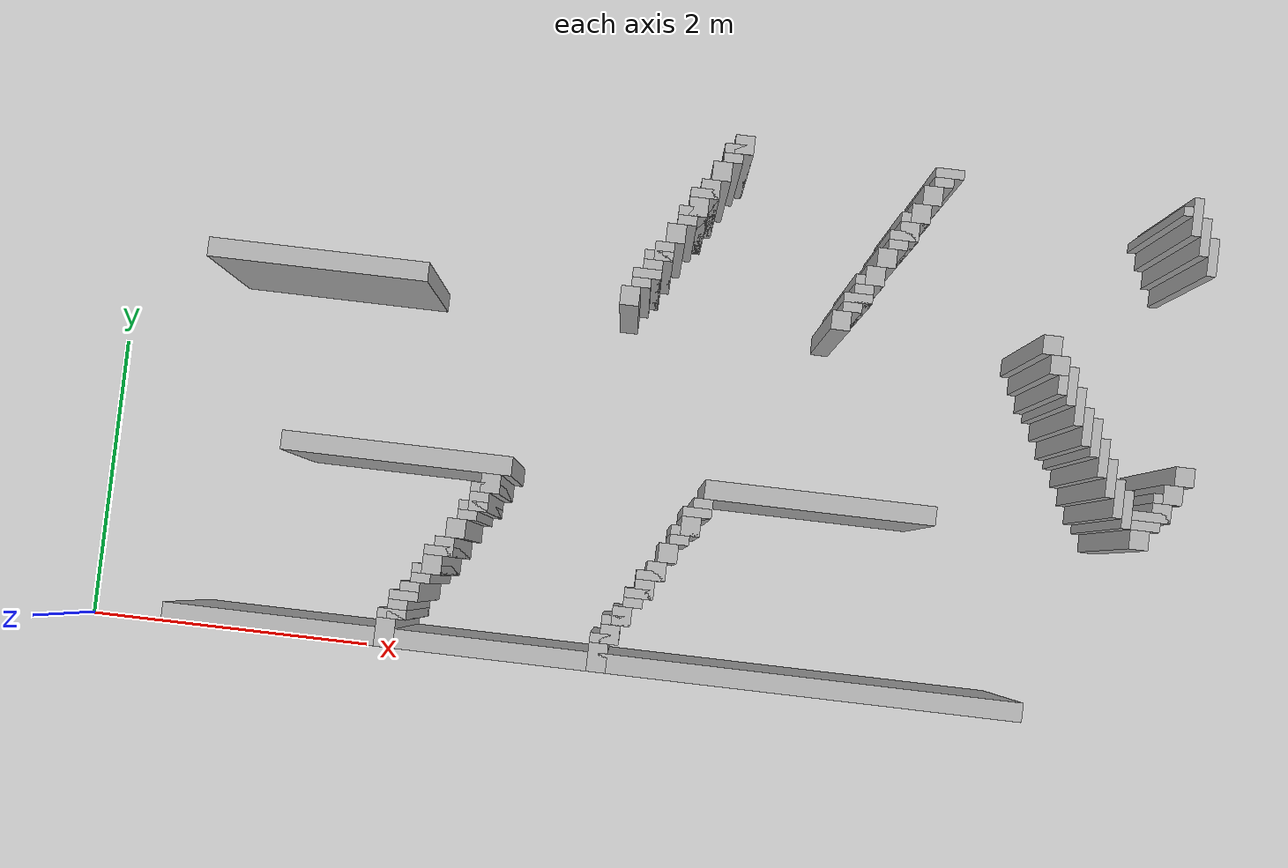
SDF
<sdf version="1.6">
 <world name="slam_world">
  <model name="ground_plane">
   <static>true</static>
   <link name="link">
    <collision name="collision">
     <geometry><plane><normal>0 0 1</normal><size>100 100</size></plane></geometry>
    </collision>
    <visual name="visual">
     <geometry><plane><normal>0 0 1</normal><size>100 100</size></plane></geometry>
     <material>
      <ambient>0.8 0.8 0.8 1</ambient>
      <diffuse>0.8 0.8 0.8 1</diffuse>
      <specular>0.8 0.8 0.8 1</specular>
     </material>
    </visual>
   </link>
  </model>
  <model name="wall_1931">
   <static>true</static>
   <pose>4.276595744680851 3.6382978723404253 1.0 0 0 0</pose>
   <link name="link">
    <collision name="collision">
     <geometry><box><size>0.1276595744680851 0.1276595744680851 2.0</size></box></geometry>
    </collision>
    <visual name="visual">
     <geometry><box><size>0.1276595744680851 0.1276595744680851 2.0</size></box></geometry>
     <material><ambient>0.5 0.5 0.5 1</ambient><diffuse>0.7 0.7 0.7 1</diffuse></material>
    </visual>
   </link>
  </model>
  <model name="wall_1939">
   <static>true</static>
   <pose>4.24468085106383 3.606382978723404 1.0 0 0 0</pose>
   <link name="link">
    <collision name="collision">
     <geometry><box><size>0.19148936170212766 0.06382978723404255 2.0</size></box></geometry>
    </collision>
    <visual name="visual">
     <geometry><box><size>0.19148936170212766 0.06382978723404255 2.0</size></box></geometry>
     <material><ambient>0.5 0.5 0.5 1</ambient><diffuse>0.7 0.7 0.7 1</diffuse></material>
    </visual>
   </link>
  </model>
  <model name="wall_1940">
   <static>true</static>
   <pose>5.648936170212766 3.606382978723404 1.0 0 0 0</pose>
   <link name="link">
    <collision name="collision">
     <geometry><box><size>0.19148936170212766 0.06382978723404255 2.0</size></box></geometry>
    </collision>
    <visual name="visual">
     <geometry><box><size>0.19148936170212766 0.06382978723404255 2.0</size></box></geometry>
     <material><ambient>0.5 0.5 0.5 1</ambient><diffuse>0.7 0.7 0.7 1</diffuse></material>
    </visual>
   </link>
  </model>
  <model name="wall_1941">
   <static>true</static>
   <pose>7.3085106382978715 3.5106382978723403 1.0 0 0 0</pose>
   <link name="link">
    <collision name="collision">
     <geometry><box><size>0.06382978723404255 0.2553191489361702 2.0</size></box></geometry>
    </collision>
    <visual name="visual">
     <geometry><box><size>0.06382978723404255 0.2553191489361702 2.0</size></box></geometry>
     <material><ambient>0.5 0.5 0.5 1</ambient><diffuse>0.7 0.7 0.7 1</diffuse></material>
    </visual>
   </link>
  </model>
  <model name="wall_1946">
   <static>true</static>
   <pose>4.212765957446808 3.5425531914893615 1.0 0 0 0</pose>
   <link name="link">
    <collision name="collision">
     <geometry><box><size>0.1276595744680851 0.06382978723404255 2.0</size></box></geometry>
    </collision>
    <visual name="visual">
     <geometry><box><size>0.1276595744680851 0.06382978723404255 2.0</size></box></geometry>
     <material><ambient>0.5 0.5 0.5 1</ambient><diffuse>0.7 0.7 0.7 1</diffuse></material>
    </visual>
   </link>
  </model>
  <model name="wall_1947">
   <static>true</static>
   <pose>5.617021276595744 3.5425531914893615 1.0 0 0 0</pose>
   <link name="link">
    <collision name="collision">
     <geometry><box><size>0.1276595744680851 0.06382978723404255 2.0</size></box></geometry>
    </collision>
    <visual name="visual">
     <geometry><box><size>0.1276595744680851 0.06382978723404255 2.0</size></box></geometry>
     <material><ambient>0.5 0.5 0.5 1</ambient><diffuse>0.7 0.7 0.7 1</diffuse></material>
    </visual>
   </link>
  </model>
  <model name="wall_1948">
   <static>true</static>
   <pose>7.276595744680851 3.5425531914893615 1.0 0 0 0</pose>
   <link name="link">
    <collision name="collision">
     <geometry><box><size>0.1276595744680851 0.06382978723404255 2.0</size></box></geometry>
    </collision>
    <visual name="visual">
     <geometry><box><size>0.1276595744680851 0.06382978723404255 2.0</size></box></geometry>
     <material><ambient>0.5 0.5 0.5 1</ambient><diffuse>0.7 0.7 0.7 1</diffuse></material>
    </visual>
   </link>
  </model>
  <model name="wall_1951">
   <static>true</static>
   <pose>4.148936170212766 3.4468085106382977 1.0 0 0 0</pose>
   <link name="link">
    <collision name="collision">
     <geometry><box><size>0.1276595744680851 0.1276595744680851 2.0</size></box></geometry>
    </collision>
    <visual name="visual">
     <geometry><box><size>0.1276595744680851 0.1276595744680851 2.0</size></box></geometry>
     <material><ambient>0.5 0.5 0.5 1</ambient><diffuse>0.7 0.7 0.7 1</diffuse></material>
    </visual>
   </link>
  </model>
  <model name="wall_1952">
   <static>true</static>
   <pose>5.553191489361701 3.4468085106382977 1.0 0 0 0</pose>
   <link name="link">
    <collision name="collision">
     <geometry><box><size>0.1276595744680851 0.1276595744680851 2.0</size></box></geometry>
    </collision>
    <visual name="visual">
     <geometry><box><size>0.1276595744680851 0.1276595744680851 2.0</size></box></geometry>
     <material><ambient>0.5 0.5 0.5 1</ambient><diffuse>0.7 0.7 0.7 1</diffuse></material>
    </visual>
   </link>
  </model>
  <model name="wall_1953">
   <static>true</static>
   <pose>7.372340425531914 3.382978723404255 1.0 0 0 0</pose>
   <link name="link">
    <collision name="collision">
     <geometry><box><size>0.06382978723404255 0.2553191489361702 2.0</size></box></geometry>
    </collision>
    <visual name="visual">
     <geometry><box><size>0.06382978723404255 0.2553191489361702 2.0</size></box></geometry>
     <material><ambient>0.5 0.5 0.5 1</ambient><diffuse>0.7 0.7 0.7 1</diffuse></material>
    </visual>
   </link>
  </model>
  <model name="wall_1959">
   <static>true</static>
   <pose>4.085106382978723 3.3191489361702127 1.0 0 0 0</pose>
   <link name="link">
    <collision name="collision">
     <geometry><box><size>0.1276595744680851 0.1276595744680851 2.0</size></box></geometry>
    </collision>
    <visual name="visual">
     <geometry><box><size>0.1276595744680851 0.1276595744680851 2.0</size></box></geometry>
     <material><ambient>0.5 0.5 0.5 1</ambient><diffuse>0.7 0.7 0.7 1</diffuse></material>
    </visual>
   </link>
  </model>
  <model name="wall_1960">
   <static>true</static>
   <pose>5.489361702127659 3.3191489361702127 1.0 0 0 0</pose>
   <link name="link">
    <collision name="collision">
     <geometry><box><size>0.1276595744680851 0.1276595744680851 2.0</size></box></geometry>
    </collision>
    <visual name="visual">
     <geometry><box><size>0.1276595744680851 0.1276595744680851 2.0</size></box></geometry>
     <material><ambient>0.5 0.5 0.5 1</ambient><diffuse>0.7 0.7 0.7 1</diffuse></material>
    </visual>
   </link>
  </model>
  <model name="wall_1961">
   <static>true</static>
   <pose>7.436170212765957 3.25531914893617 1.0 0 0 0</pose>
   <link name="link">
    <collision name="collision">
     <geometry><box><size>0.06382978723404255 0.2553191489361702 2.0</size></box></geometry>
    </collision>
    <visual name="visual">
     <geometry><box><size>0.06382978723404255 0.2553191489361702 2.0</size></box></geometry>
     <material><ambient>0.5 0.5 0.5 1</ambient><diffuse>0.7 0.7 0.7 1</diffuse></material>
    </visual>
   </link>
  </model>
  <model name="wall_1967">
   <static>true</static>
   <pose>4.053191489361701 3.2872340425531914 1.0 0 0 0</pose>
   <link name="link">
    <collision name="collision">
     <geometry><box><size>0.19148936170212766 0.06382978723404255 2.0</size></box></geometry>
    </collision>
    <visual name="visual">
     <geometry><box><size>0.19148936170212766 0.06382978723404255 2.0</size></box></geometry>
     <material><ambient>0.5 0.5 0.5 1</ambient><diffuse>0.7 0.7 0.7 1</diffuse></material>
    </visual>
   </link>
  </model>
  <model name="wall_1968">
   <static>true</static>
   <pose>5.457446808510638 3.2872340425531914 1.0 0 0 0</pose>
   <link name="link">
    <collision name="collision">
     <geometry><box><size>0.19148936170212766 0.06382978723404255 2.0</size></box></geometry>
    </collision>
    <visual name="visual">
     <geometry><box><size>0.19148936170212766 0.06382978723404255 2.0</size></box></geometry>
     <material><ambient>0.5 0.5 0.5 1</ambient><diffuse>0.7 0.7 0.7 1</diffuse></material>
    </visual>
   </link>
  </model>
  <model name="wall_1974">
   <static>true</static>
   <pose>4.0212765957446805 3.1914893617021276 1.0 0 0 0</pose>
   <link name="link">
    <collision name="collision">
     <geometry><box><size>0.1276595744680851 0.1276595744680851 2.0</size></box></geometry>
    </collision>
    <visual name="visual">
     <geometry><box><size>0.1276595744680851 0.1276595744680851 2.0</size></box></geometry>
     <material><ambient>0.5 0.5 0.5 1</ambient><diffuse>0.7 0.7 0.7 1</diffuse></material>
    </visual>
   </link>
  </model>
  <model name="wall_1975">
   <static>true</static>
   <pose>5.425531914893616 3.1914893617021276 1.0 0 0 0</pose>
   <link name="link">
    <collision name="collision">
     <geometry><box><size>0.1276595744680851 0.1276595744680851 2.0</size></box></geometry>
    </collision>
    <visual name="visual">
     <geometry><box><size>0.1276595744680851 0.1276595744680851 2.0</size></box></geometry>
     <material><ambient>0.5 0.5 0.5 1</ambient><diffuse>0.7 0.7 0.7 1</diffuse></material>
    </visual>
   </link>
  </model>
  <model name="wall_1978">
   <static>true</static>
   <pose>3.9893617021276593 3.1595744680851063 1.0 0 0 0</pose>
   <link name="link">
    <collision name="collision">
     <geometry><box><size>0.19148936170212766 0.06382978723404255 2.0</size></box></geometry>
    </collision>
    <visual name="visual">
     <geometry><box><size>0.19148936170212766 0.06382978723404255 2.0</size></box></geometry>
     <material><ambient>0.5 0.5 0.5 1</ambient><diffuse>0.7 0.7 0.7 1</diffuse></material>
    </visual>
   </link>
  </model>
  <model name="wall_1979">
   <static>true</static>
   <pose>5.3936170212765955 3.1595744680851063 1.0 0 0 0</pose>
   <link name="link">
    <collision name="collision">
     <geometry><box><size>0.19148936170212766 0.06382978723404255 2.0</size></box></geometry>
    </collision>
    <visual name="visual">
     <geometry><box><size>0.19148936170212766 0.06382978723404255 2.0</size></box></geometry>
     <material><ambient>0.5 0.5 0.5 1</ambient><diffuse>0.7 0.7 0.7 1</diffuse></material>
    </visual>
   </link>
  </model>
  <model name="wall_1985">
   <static>true</static>
   <pose>3.957446808510638 3.095744680851064 1.0 0 0 0</pose>
   <link name="link">
    <collision name="collision">
     <geometry><box><size>0.1276595744680851 0.06382978723404255 2.0</size></box></geometry>
    </collision>
    <visual name="visual">
     <geometry><box><size>0.1276595744680851 0.06382978723404255 2.0</size></box></geometry>
     <material><ambient>0.5 0.5 0.5 1</ambient><diffuse>0.7 0.7 0.7 1</diffuse></material>
    </visual>
   </link>
  </model>
  <model name="wall_1986">
   <static>true</static>
   <pose>5.361702127659574 3.095744680851064 1.0 0 0 0</pose>
   <link name="link">
    <collision name="collision">
     <geometry><box><size>0.1276595744680851 0.06382978723404255 2.0</size></box></geometry>
    </collision>
    <visual name="visual">
     <geometry><box><size>0.1276595744680851 0.06382978723404255 2.0</size></box></geometry>
     <material><ambient>0.5 0.5 0.5 1</ambient><diffuse>0.7 0.7 0.7 1</diffuse></material>
    </visual>
   </link>
  </model>
  <model name="wall_1989">
   <static>true</static>
   <pose>3.8936170212765955 2.9999999999999996 1.0 0 0 0</pose>
   <link name="link">
    <collision name="collision">
     <geometry><box><size>0.1276595744680851 0.1276595744680851 2.0</size></box></geometry>
    </collision>
    <visual name="visual">
     <geometry><box><size>0.1276595744680851 0.1276595744680851 2.0</size></box></geometry>
     <material><ambient>0.5 0.5 0.5 1</ambient><diffuse>0.7 0.7 0.7 1</diffuse></material>
    </visual>
   </link>
  </model>
  <model name="wall_1990">
   <static>true</static>
   <pose>5.297872340425531 2.9999999999999996 1.0 0 0 0</pose>
   <link name="link">
    <collision name="collision">
     <geometry><box><size>0.1276595744680851 0.1276595744680851 2.0</size></box></geometry>
    </collision>
    <visual name="visual">
     <geometry><box><size>0.1276595744680851 0.1276595744680851 2.0</size></box></geometry>
     <material><ambient>0.5 0.5 0.5 1</ambient><diffuse>0.7 0.7 0.7 1</diffuse></material>
    </visual>
   </link>
  </model>
  <model name="wall_1997">
   <static>true</static>
   <pose>3.829787234042553 2.8723404255319145 1.0 0 0 0</pose>
   <link name="link">
    <collision name="collision">
     <geometry><box><size>0.1276595744680851 0.1276595744680851 2.0</size></box></geometry>
    </collision>
    <visual name="visual">
     <geometry><box><size>0.1276595744680851 0.1276595744680851 2.0</size></box></geometry>
     <material><ambient>0.5 0.5 0.5 1</ambient><diffuse>0.7 0.7 0.7 1</diffuse></material>
    </visual>
   </link>
  </model>
  <model name="wall_1998">
   <static>true</static>
   <pose>5.234042553191489 2.8723404255319145 1.0 0 0 0</pose>
   <link name="link">
    <collision name="collision">
     <geometry><box><size>0.1276595744680851 0.1276595744680851 2.0</size></box></geometry>
    </collision>
    <visual name="visual">
     <geometry><box><size>0.1276595744680851 0.1276595744680851 2.0</size></box></geometry>
     <material><ambient>0.5 0.5 0.5 1</ambient><diffuse>0.7 0.7 0.7 1</diffuse></material>
    </visual>
   </link>
  </model>
  <model name="wall_2005">
   <static>true</static>
   <pose>3.7978723404255317 2.840425531914893 1.0 0 0 0</pose>
   <link name="link">
    <collision name="collision">
     <geometry><box><size>0.19148936170212766 0.06382978723404255 2.0</size></box></geometry>
    </collision>
    <visual name="visual">
     <geometry><box><size>0.19148936170212766 0.06382978723404255 2.0</size></box></geometry>
     <material><ambient>0.5 0.5 0.5 1</ambient><diffuse>0.7 0.7 0.7 1</diffuse></material>
    </visual>
   </link>
  </model>
  <model name="wall_2006">
   <static>true</static>
   <pose>5.202127659574468 2.840425531914893 1.0 0 0 0</pose>
   <link name="link">
    <collision name="collision">
     <geometry><box><size>0.19148936170212766 0.06382978723404255 2.0</size></box></geometry>
    </collision>
    <visual name="visual">
     <geometry><box><size>0.19148936170212766 0.06382978723404255 2.0</size></box></geometry>
     <material><ambient>0.5 0.5 0.5 1</ambient><diffuse>0.7 0.7 0.7 1</diffuse></material>
    </visual>
   </link>
  </model>
  <model name="wall_2012">
   <static>true</static>
   <pose>3.7659574468085104 2.7446808510638294 1.0 0 0 0</pose>
   <link name="link">
    <collision name="collision">
     <geometry><box><size>0.1276595744680851 0.1276595744680851 2.0</size></box></geometry>
    </collision>
    <visual name="visual">
     <geometry><box><size>0.1276595744680851 0.1276595744680851 2.0</size></box></geometry>
     <material><ambient>0.5 0.5 0.5 1</ambient><diffuse>0.7 0.7 0.7 1</diffuse></material>
    </visual>
   </link>
  </model>
  <model name="wall_2013">
   <static>true</static>
   <pose>5.170212765957446 2.7446808510638294 1.0 0 0 0</pose>
   <link name="link">
    <collision name="collision">
     <geometry><box><size>0.1276595744680851 0.1276595744680851 2.0</size></box></geometry>
    </collision>
    <visual name="visual">
     <geometry><box><size>0.1276595744680851 0.1276595744680851 2.0</size></box></geometry>
     <material><ambient>0.5 0.5 0.5 1</ambient><diffuse>0.7 0.7 0.7 1</diffuse></material>
    </visual>
   </link>
  </model>
  <model name="wall_2016">
   <static>true</static>
   <pose>3.734042553191489 2.712765957446808 1.0 0 0 0</pose>
   <link name="link">
    <collision name="collision">
     <geometry><box><size>0.19148936170212766 0.06382978723404255 2.0</size></box></geometry>
    </collision>
    <visual name="visual">
     <geometry><box><size>0.19148936170212766 0.06382978723404255 2.0</size></box></geometry>
     <material><ambient>0.5 0.5 0.5 1</ambient><diffuse>0.7 0.7 0.7 1</diffuse></material>
    </visual>
   </link>
  </model>
  <model name="wall_2017">
   <static>true</static>
   <pose>5.138297872340425 2.712765957446808 1.0 0 0 0</pose>
   <link name="link">
    <collision name="collision">
     <geometry><box><size>0.19148936170212766 0.06382978723404255 2.0</size></box></geometry>
    </collision>
    <visual name="visual">
     <geometry><box><size>0.19148936170212766 0.06382978723404255 2.0</size></box></geometry>
     <material><ambient>0.5 0.5 0.5 1</ambient><diffuse>0.7 0.7 0.7 1</diffuse></material>
    </visual>
   </link>
  </model>
  <model name="wall_2022">
   <static>true</static>
   <pose>3.702127659574468 2.6489361702127656 1.0 0 0 0</pose>
   <link name="link">
    <collision name="collision">
     <geometry><box><size>0.1276595744680851 0.06382978723404255 2.0</size></box></geometry>
    </collision>
    <visual name="visual">
     <geometry><box><size>0.1276595744680851 0.06382978723404255 2.0</size></box></geometry>
     <material><ambient>0.5 0.5 0.5 1</ambient><diffuse>0.7 0.7 0.7 1</diffuse></material>
    </visual>
   </link>
  </model>
  <model name="wall_2023">
   <static>true</static>
   <pose>5.106382978723404 2.6489361702127656 1.0 0 0 0</pose>
   <link name="link">
    <collision name="collision">
     <geometry><box><size>0.1276595744680851 0.06382978723404255 2.0</size></box></geometry>
    </collision>
    <visual name="visual">
     <geometry><box><size>0.1276595744680851 0.06382978723404255 2.0</size></box></geometry>
     <material><ambient>0.5 0.5 0.5 1</ambient><diffuse>0.7 0.7 0.7 1</diffuse></material>
    </visual>
   </link>
  </model>
  <model name="wall_2025">
   <static>true</static>
   <pose>1.5638297872340425 2.553191489361702 1.0 0 0 0</pose>
   <link name="link">
    <collision name="collision">
     <geometry><box><size>1.4680851063829785 0.1276595744680851 2.0</size></box></geometry>
    </collision>
    <visual name="visual">
     <geometry><box><size>1.4680851063829785 0.1276595744680851 2.0</size></box></geometry>
     <material><ambient>0.5 0.5 0.5 1</ambient><diffuse>0.7 0.7 0.7 1</diffuse></material>
    </visual>
   </link>
  </model>
  <model name="wall_2026">
   <static>true</static>
   <pose>3.6382978723404253 2.553191489361702 1.0 0 0 0</pose>
   <link name="link">
    <collision name="collision">
     <geometry><box><size>0.1276595744680851 0.1276595744680851 2.0</size></box></geometry>
    </collision>
    <visual name="visual">
     <geometry><box><size>0.1276595744680851 0.1276595744680851 2.0</size></box></geometry>
     <material><ambient>0.5 0.5 0.5 1</ambient><diffuse>0.7 0.7 0.7 1</diffuse></material>
    </visual>
   </link>
  </model>
  <model name="wall_2027">
   <static>true</static>
   <pose>5.042553191489361 2.553191489361702 1.0 0 0 0</pose>
   <link name="link">
    <collision name="collision">
     <geometry><box><size>0.1276595744680851 0.1276595744680851 2.0</size></box></geometry>
    </collision>
    <visual name="visual">
     <geometry><box><size>0.1276595744680851 0.1276595744680851 2.0</size></box></geometry>
     <material><ambient>0.5 0.5 0.5 1</ambient><diffuse>0.7 0.7 0.7 1</diffuse></material>
    </visual>
   </link>
  </model>
  <model name="wall_2028">
   <static>true</static>
   <pose>6.446808510638298 2.553191489361702 1.0 0 0 0</pose>
   <link name="link">
    <collision name="collision">
     <geometry><box><size>0.1276595744680851 0.1276595744680851 2.0</size></box></geometry>
    </collision>
    <visual name="visual">
     <geometry><box><size>0.1276595744680851 0.1276595744680851 2.0</size></box></geometry>
     <material><ambient>0.5 0.5 0.5 1</ambient><diffuse>0.7 0.7 0.7 1</diffuse></material>
    </visual>
   </link>
  </model>
  <model name="wall_2034">
   <static>true</static>
   <pose>6.51063829787234 2.4255319148936167 1.0 0 0 0</pose>
   <link name="link">
    <collision name="collision">
     <geometry><box><size>0.1276595744680851 0.1276595744680851 2.0</size></box></geometry>
    </collision>
    <visual name="visual">
     <geometry><box><size>0.1276595744680851 0.1276595744680851 2.0</size></box></geometry>
     <material><ambient>0.5 0.5 0.5 1</ambient><diffuse>0.7 0.7 0.7 1</diffuse></material>
    </visual>
   </link>
  </model>
  <model name="wall_2040">
   <static>true</static>
   <pose>6.606382978723404 2.2978723404255317 1.0 0 0 0</pose>
   <link name="link">
    <collision name="collision">
     <geometry><box><size>0.06382978723404255 0.2553191489361702 2.0</size></box></geometry>
    </collision>
    <visual name="visual">
     <geometry><box><size>0.06382978723404255 0.2553191489361702 2.0</size></box></geometry>
     <material><ambient>0.5 0.5 0.5 1</ambient><diffuse>0.7 0.7 0.7 1</diffuse></material>
    </visual>
   </link>
  </model>
  <model name="wall_2047">
   <static>true</static>
   <pose>6.574468085106383 2.2978723404255317 1.0 0 0 0</pose>
   <link name="link">
    <collision name="collision">
     <geometry><box><size>0.1276595744680851 0.1276595744680851 2.0</size></box></geometry>
    </collision>
    <visual name="visual">
     <geometry><box><size>0.1276595744680851 0.1276595744680851 2.0</size></box></geometry>
     <material><ambient>0.5 0.5 0.5 1</ambient><diffuse>0.7 0.7 0.7 1</diffuse></material>
    </visual>
   </link>
  </model>
  <model name="wall_2055">
   <static>true</static>
   <pose>6.670212765957446 2.1702127659574466 1.0 0 0 0</pose>
   <link name="link">
    <collision name="collision">
     <geometry><box><size>0.06382978723404255 0.2553191489361702 2.0</size></box></geometry>
    </collision>
    <visual name="visual">
     <geometry><box><size>0.06382978723404255 0.2553191489361702 2.0</size></box></geometry>
     <material><ambient>0.5 0.5 0.5 1</ambient><diffuse>0.7 0.7 0.7 1</diffuse></material>
    </visual>
   </link>
  </model>
  <model name="wall_2067">
   <static>true</static>
   <pose>6.734042553191489 2.0425531914893615 1.0 0 0 0</pose>
   <link name="link">
    <collision name="collision">
     <geometry><box><size>0.06382978723404255 0.2553191489361702 2.0</size></box></geometry>
    </collision>
    <visual name="visual">
     <geometry><box><size>0.06382978723404255 0.2553191489361702 2.0</size></box></geometry>
     <material><ambient>0.5 0.5 0.5 1</ambient><diffuse>0.7 0.7 0.7 1</diffuse></material>
    </visual>
   </link>
  </model>
  <model name="wall_2075">
   <static>true</static>
   <pose>6.797872340425531 1.978723404255319 1.0 0 0 0</pose>
   <link name="link">
    <collision name="collision">
     <geometry><box><size>0.06382978723404255 0.2553191489361702 2.0</size></box></geometry>
    </collision>
    <visual name="visual">
     <geometry><box><size>0.06382978723404255 0.2553191489361702 2.0</size></box></geometry>
     <material><ambient>0.5 0.5 0.5 1</ambient><diffuse>0.7 0.7 0.7 1</diffuse></material>
    </visual>
   </link>
  </model>
  <model name="wall_2086">
   <static>true</static>
   <pose>6.861702127659574 1.851063829787234 1.0 0 0 0</pose>
   <link name="link">
    <collision name="collision">
     <geometry><box><size>0.06382978723404255 0.2553191489361702 2.0</size></box></geometry>
    </collision>
    <visual name="visual">
     <geometry><box><size>0.06382978723404255 0.2553191489361702 2.0</size></box></geometry>
     <material><ambient>0.5 0.5 0.5 1</ambient><diffuse>0.7 0.7 0.7 1</diffuse></material>
    </visual>
   </link>
  </model>
  <model name="wall_2097">
   <static>true</static>
   <pose>6.925531914893616 1.7234042553191489 1.0 0 0 0</pose>
   <link name="link">
    <collision name="collision">
     <geometry><box><size>0.06382978723404255 0.2553191489361702 2.0</size></box></geometry>
    </collision>
    <visual name="visual">
     <geometry><box><size>0.06382978723404255 0.2553191489361702 2.0</size></box></geometry>
     <material><ambient>0.5 0.5 0.5 1</ambient><diffuse>0.7 0.7 0.7 1</diffuse></material>
    </visual>
   </link>
  </model>
  <model name="wall_2098">
   <static>true</static>
   <pose>7.404255319148936 1.7872340425531914 1.0 0 0 0</pose>
   <link name="link">
    <collision name="collision">
     <geometry><box><size>0.1276595744680851 0.1276595744680851 2.0</size></box></geometry>
    </collision>
    <visual name="visual">
     <geometry><box><size>0.1276595744680851 0.1276595744680851 2.0</size></box></geometry>
     <material><ambient>0.5 0.5 0.5 1</ambient><diffuse>0.7 0.7 0.7 1</diffuse></material>
    </visual>
   </link>
  </model>
  <model name="wall_2105">
   <static>true</static>
   <pose>6.989361702127659 1.5957446808510638 1.0 0 0 0</pose>
   <link name="link">
    <collision name="collision">
     <geometry><box><size>0.06382978723404255 0.2553191489361702 2.0</size></box></geometry>
    </collision>
    <visual name="visual">
     <geometry><box><size>0.06382978723404255 0.2553191489361702 2.0</size></box></geometry>
     <material><ambient>0.5 0.5 0.5 1</ambient><diffuse>0.7 0.7 0.7 1</diffuse></material>
    </visual>
   </link>
  </model>
  <model name="wall_2106">
   <static>true</static>
   <pose>7.340425531914893 1.6595744680851063 1.0 0 0 0</pose>
   <link name="link">
    <collision name="collision">
     <geometry><box><size>0.1276595744680851 0.1276595744680851 2.0</size></box></geometry>
    </collision>
    <visual name="visual">
     <geometry><box><size>0.1276595744680851 0.1276595744680851 2.0</size></box></geometry>
     <material><ambient>0.5 0.5 0.5 1</ambient><diffuse>0.7 0.7 0.7 1</diffuse></material>
    </visual>
   </link>
  </model>
  <model name="wall_2113">
   <static>true</static>
   <pose>7.053191489361701 1.5319148936170213 1.0 0 0 0</pose>
   <link name="link">
    <collision name="collision">
     <geometry><box><size>0.06382978723404255 0.2553191489361702 2.0</size></box></geometry>
    </collision>
    <visual name="visual">
     <geometry><box><size>0.06382978723404255 0.2553191489361702 2.0</size></box></geometry>
     <material><ambient>0.5 0.5 0.5 1</ambient><diffuse>0.7 0.7 0.7 1</diffuse></material>
    </visual>
   </link>
  </model>
  <model name="wall_2114">
   <static>true</static>
   <pose>7.3085106382978715 1.627659574468085 1.0 0 0 0</pose>
   <link name="link">
    <collision name="collision">
     <geometry><box><size>0.19148936170212766 0.06382978723404255 2.0</size></box></geometry>
    </collision>
    <visual name="visual">
     <geometry><box><size>0.19148936170212766 0.06382978723404255 2.0</size></box></geometry>
     <material><ambient>0.5 0.5 0.5 1</ambient><diffuse>0.7 0.7 0.7 1</diffuse></material>
    </visual>
   </link>
  </model>
  <model name="wall_2121">
   <static>true</static>
   <pose>7.276595744680851 1.5319148936170213 1.0 0 0 0</pose>
   <link name="link">
    <collision name="collision">
     <geometry><box><size>0.1276595744680851 0.1276595744680851 2.0</size></box></geometry>
    </collision>
    <visual name="visual">
     <geometry><box><size>0.1276595744680851 0.1276595744680851 2.0</size></box></geometry>
     <material><ambient>0.5 0.5 0.5 1</ambient><diffuse>0.7 0.7 0.7 1</diffuse></material>
    </visual>
   </link>
  </model>
  <model name="wall_2124">
   <static>true</static>
   <pose>7.212765957446808 1.4999999999999998 1.0 0 0 0</pose>
   <link name="link">
    <collision name="collision">
     <geometry><box><size>0.2553191489361702 0.06382978723404255 2.0</size></box></geometry>
    </collision>
    <visual name="visual">
     <geometry><box><size>0.2553191489361702 0.06382978723404255 2.0</size></box></geometry>
     <material><ambient>0.5 0.5 0.5 1</ambient><diffuse>0.7 0.7 0.7 1</diffuse></material>
    </visual>
   </link>
  </model>
  <model name="wall_2131">
   <static>true</static>
   <pose>7.180851063829786 1.4361702127659572 1.0 0 0 0</pose>
   <link name="link">
    <collision name="collision">
     <geometry><box><size>0.19148936170212766 0.06382978723404255 2.0</size></box></geometry>
    </collision>
    <visual name="visual">
     <geometry><box><size>0.19148936170212766 0.06382978723404255 2.0</size></box></geometry>
     <material><ambient>0.5 0.5 0.5 1</ambient><diffuse>0.7 0.7 0.7 1</diffuse></material>
    </visual>
   </link>
  </model>
  <model name="wall_2134">
   <static>true</static>
   <pose>2.234042553191489 1.3404255319148934 1.0 0 0 0</pose>
   <link name="link">
    <collision name="collision">
     <geometry><box><size>1.5319148936170213 0.1276595744680851 2.0</size></box></geometry>
    </collision>
    <visual name="visual">
     <geometry><box><size>1.5319148936170213 0.1276595744680851 2.0</size></box></geometry>
     <material><ambient>0.5 0.5 0.5 1</ambient><diffuse>0.7 0.7 0.7 1</diffuse></material>
    </visual>
   </link>
  </model>
  <model name="wall_2135">
   <static>true</static>
   <pose>5.042553191489361 1.3404255319148934 1.0 0 0 0</pose>
   <link name="link">
    <collision name="collision">
     <geometry><box><size>1.5319148936170213 0.1276595744680851 2.0</size></box></geometry>
    </collision>
    <visual name="visual">
     <geometry><box><size>1.5319148936170213 0.1276595744680851 2.0</size></box></geometry>
     <material><ambient>0.5 0.5 0.5 1</ambient><diffuse>0.7 0.7 0.7 1</diffuse></material>
    </visual>
   </link>
  </model>
  <model name="wall_2136">
   <static>true</static>
   <pose>7.148936170212766 1.3404255319148934 1.0 0 0 0</pose>
   <link name="link">
    <collision name="collision">
     <geometry><box><size>0.1276595744680851 0.1276595744680851 2.0</size></box></geometry>
    </collision>
    <visual name="visual">
     <geometry><box><size>0.1276595744680851 0.1276595744680851 2.0</size></box></geometry>
     <material><ambient>0.5 0.5 0.5 1</ambient><diffuse>0.7 0.7 0.7 1</diffuse></material>
    </visual>
   </link>
  </model>
  <model name="wall_2142">
   <static>true</static>
   <pose>2.8723404255319145 1.2127659574468084 1.0 0 0 0</pose>
   <link name="link">
    <collision name="collision">
     <geometry><box><size>0.1276595744680851 0.1276595744680851 2.0</size></box></geometry>
    </collision>
    <visual name="visual">
     <geometry><box><size>0.1276595744680851 0.1276595744680851 2.0</size></box></geometry>
     <material><ambient>0.5 0.5 0.5 1</ambient><diffuse>0.7 0.7 0.7 1</diffuse></material>
    </visual>
   </link>
  </model>
  <model name="wall_2143">
   <static>true</static>
   <pose>4.276595744680851 1.2127659574468084 1.0 0 0 0</pose>
   <link name="link">
    <collision name="collision">
     <geometry><box><size>0.1276595744680851 0.1276595744680851 2.0</size></box></geometry>
    </collision>
    <visual name="visual">
     <geometry><box><size>0.1276595744680851 0.1276595744680851 2.0</size></box></geometry>
     <material><ambient>0.5 0.5 0.5 1</ambient><diffuse>0.7 0.7 0.7 1</diffuse></material>
    </visual>
   </link>
  </model>
  <model name="wall_2148">
   <static>true</static>
   <pose>2.840425531914893 1.180851063829787 1.0 0 0 0</pose>
   <link name="link">
    <collision name="collision">
     <geometry><box><size>0.19148936170212766 0.06382978723404255 2.0</size></box></geometry>
    </collision>
    <visual name="visual">
     <geometry><box><size>0.19148936170212766 0.06382978723404255 2.0</size></box></geometry>
     <material><ambient>0.5 0.5 0.5 1</ambient><diffuse>0.7 0.7 0.7 1</diffuse></material>
    </visual>
   </link>
  </model>
  <model name="wall_2149">
   <static>true</static>
   <pose>4.24468085106383 1.180851063829787 1.0 0 0 0</pose>
   <link name="link">
    <collision name="collision">
     <geometry><box><size>0.19148936170212766 0.06382978723404255 2.0</size></box></geometry>
    </collision>
    <visual name="visual">
     <geometry><box><size>0.19148936170212766 0.06382978723404255 2.0</size></box></geometry>
     <material><ambient>0.5 0.5 0.5 1</ambient><diffuse>0.7 0.7 0.7 1</diffuse></material>
    </visual>
   </link>
  </model>
  <model name="wall_2154">
   <static>true</static>
   <pose>2.808510638297872 1.0851063829787233 1.0 0 0 0</pose>
   <link name="link">
    <collision name="collision">
     <geometry><box><size>0.1276595744680851 0.1276595744680851 2.0</size></box></geometry>
    </collision>
    <visual name="visual">
     <geometry><box><size>0.1276595744680851 0.1276595744680851 2.0</size></box></geometry>
     <material><ambient>0.5 0.5 0.5 1</ambient><diffuse>0.7 0.7 0.7 1</diffuse></material>
    </visual>
   </link>
  </model>
  <model name="wall_2155">
   <static>true</static>
   <pose>4.212765957446808 1.0851063829787233 1.0 0 0 0</pose>
   <link name="link">
    <collision name="collision">
     <geometry><box><size>0.1276595744680851 0.1276595744680851 2.0</size></box></geometry>
    </collision>
    <visual name="visual">
     <geometry><box><size>0.1276595744680851 0.1276595744680851 2.0</size></box></geometry>
     <material><ambient>0.5 0.5 0.5 1</ambient><diffuse>0.7 0.7 0.7 1</diffuse></material>
    </visual>
   </link>
  </model>
  <model name="wall_2160">
   <static>true</static>
   <pose>2.7765957446808507 1.053191489361702 1.0 0 0 0</pose>
   <link name="link">
    <collision name="collision">
     <geometry><box><size>0.19148936170212766 0.06382978723404255 2.0</size></box></geometry>
    </collision>
    <visual name="visual">
     <geometry><box><size>0.19148936170212766 0.06382978723404255 2.0</size></box></geometry>
     <material><ambient>0.5 0.5 0.5 1</ambient><diffuse>0.7 0.7 0.7 1</diffuse></material>
    </visual>
   </link>
  </model>
  <model name="wall_2161">
   <static>true</static>
   <pose>4.180851063829787 1.053191489361702 1.0 0 0 0</pose>
   <link name="link">
    <collision name="collision">
     <geometry><box><size>0.19148936170212766 0.06382978723404255 2.0</size></box></geometry>
    </collision>
    <visual name="visual">
     <geometry><box><size>0.19148936170212766 0.06382978723404255 2.0</size></box></geometry>
     <material><ambient>0.5 0.5 0.5 1</ambient><diffuse>0.7 0.7 0.7 1</diffuse></material>
    </visual>
   </link>
  </model>
  <model name="wall_2165">
   <static>true</static>
   <pose>2.7446808510638294 0.9893617021276595 1.0 0 0 0</pose>
   <link name="link">
    <collision name="collision">
     <geometry><box><size>0.1276595744680851 0.06382978723404255 2.0</size></box></geometry>
    </collision>
    <visual name="visual">
     <geometry><box><size>0.1276595744680851 0.06382978723404255 2.0</size></box></geometry>
     <material><ambient>0.5 0.5 0.5 1</ambient><diffuse>0.7 0.7 0.7 1</diffuse></material>
    </visual>
   </link>
  </model>
  <model name="wall_2166">
   <static>true</static>
   <pose>4.148936170212766 0.9893617021276595 1.0 0 0 0</pose>
   <link name="link">
    <collision name="collision">
     <geometry><box><size>0.1276595744680851 0.06382978723404255 2.0</size></box></geometry>
    </collision>
    <visual name="visual">
     <geometry><box><size>0.1276595744680851 0.06382978723404255 2.0</size></box></geometry>
     <material><ambient>0.5 0.5 0.5 1</ambient><diffuse>0.7 0.7 0.7 1</diffuse></material>
    </visual>
   </link>
  </model>
  <model name="wall_2169">
   <static>true</static>
   <pose>2.680851063829787 0.8936170212765957 1.0 0 0 0</pose>
   <link name="link">
    <collision name="collision">
     <geometry><box><size>0.1276595744680851 0.1276595744680851 2.0</size></box></geometry>
    </collision>
    <visual name="visual">
     <geometry><box><size>0.1276595744680851 0.1276595744680851 2.0</size></box></geometry>
     <material><ambient>0.5 0.5 0.5 1</ambient><diffuse>0.7 0.7 0.7 1</diffuse></material>
    </visual>
   </link>
  </model>
  <model name="wall_2170">
   <static>true</static>
   <pose>4.085106382978723 0.8936170212765957 1.0 0 0 0</pose>
   <link name="link">
    <collision name="collision">
     <geometry><box><size>0.1276595744680851 0.1276595744680851 2.0</size></box></geometry>
    </collision>
    <visual name="visual">
     <geometry><box><size>0.1276595744680851 0.1276595744680851 2.0</size></box></geometry>
     <material><ambient>0.5 0.5 0.5 1</ambient><diffuse>0.7 0.7 0.7 1</diffuse></material>
    </visual>
   </link>
  </model>
  <model name="wall_2175">
   <static>true</static>
   <pose>2.6170212765957444 0.7659574468085106 1.0 0 0 0</pose>
   <link name="link">
    <collision name="collision">
     <geometry><box><size>0.1276595744680851 0.1276595744680851 2.0</size></box></geometry>
    </collision>
    <visual name="visual">
     <geometry><box><size>0.1276595744680851 0.1276595744680851 2.0</size></box></geometry>
     <material><ambient>0.5 0.5 0.5 1</ambient><diffuse>0.7 0.7 0.7 1</diffuse></material>
    </visual>
   </link>
  </model>
  <model name="wall_2176">
   <static>true</static>
   <pose>4.0212765957446805 0.7659574468085106 1.0 0 0 0</pose>
   <link name="link">
    <collision name="collision">
     <geometry><box><size>0.1276595744680851 0.1276595744680851 2.0</size></box></geometry>
    </collision>
    <visual name="visual">
     <geometry><box><size>0.1276595744680851 0.1276595744680851 2.0</size></box></geometry>
     <material><ambient>0.5 0.5 0.5 1</ambient><diffuse>0.7 0.7 0.7 1</diffuse></material>
    </visual>
   </link>
  </model>
  <model name="wall_2181">
   <static>true</static>
   <pose>2.585106382978723 0.7340425531914893 1.0 0 0 0</pose>
   <link name="link">
    <collision name="collision">
     <geometry><box><size>0.19148936170212766 0.06382978723404255 2.0</size></box></geometry>
    </collision>
    <visual name="visual">
     <geometry><box><size>0.19148936170212766 0.06382978723404255 2.0</size></box></geometry>
     <material><ambient>0.5 0.5 0.5 1</ambient><diffuse>0.7 0.7 0.7 1</diffuse></material>
    </visual>
   </link>
  </model>
  <model name="wall_2182">
   <static>true</static>
   <pose>3.9893617021276593 0.7340425531914893 1.0 0 0 0</pose>
   <link name="link">
    <collision name="collision">
     <geometry><box><size>0.19148936170212766 0.06382978723404255 2.0</size></box></geometry>
    </collision>
    <visual name="visual">
     <geometry><box><size>0.19148936170212766 0.06382978723404255 2.0</size></box></geometry>
     <material><ambient>0.5 0.5 0.5 1</ambient><diffuse>0.7 0.7 0.7 1</diffuse></material>
    </visual>
   </link>
  </model>
  <model name="wall_2186">
   <static>true</static>
   <pose>2.553191489361702 0.6382978723404255 1.0 0 0 0</pose>
   <link name="link">
    <collision name="collision">
     <geometry><box><size>0.1276595744680851 0.1276595744680851 2.0</size></box></geometry>
    </collision>
    <visual name="visual">
     <geometry><box><size>0.1276595744680851 0.1276595744680851 2.0</size></box></geometry>
     <material><ambient>0.5 0.5 0.5 1</ambient><diffuse>0.7 0.7 0.7 1</diffuse></material>
    </visual>
   </link>
  </model>
  <model name="wall_2187">
   <static>true</static>
   <pose>3.957446808510638 0.6382978723404255 1.0 0 0 0</pose>
   <link name="link">
    <collision name="collision">
     <geometry><box><size>0.1276595744680851 0.1276595744680851 2.0</size></box></geometry>
    </collision>
    <visual name="visual">
     <geometry><box><size>0.1276595744680851 0.1276595744680851 2.0</size></box></geometry>
     <material><ambient>0.5 0.5 0.5 1</ambient><diffuse>0.7 0.7 0.7 1</diffuse></material>
    </visual>
   </link>
  </model>
  <model name="wall_2190">
   <static>true</static>
   <pose>2.5212765957446805 0.6063829787234042 1.0 0 0 0</pose>
   <link name="link">
    <collision name="collision">
     <geometry><box><size>0.19148936170212766 0.06382978723404255 2.0</size></box></geometry>
    </collision>
    <visual name="visual">
     <geometry><box><size>0.19148936170212766 0.06382978723404255 2.0</size></box></geometry>
     <material><ambient>0.5 0.5 0.5 1</ambient><diffuse>0.7 0.7 0.7 1</diffuse></material>
    </visual>
   </link>
  </model>
  <model name="wall_2191">
   <static>true</static>
   <pose>3.9255319148936167 0.6063829787234042 1.0 0 0 0</pose>
   <link name="link">
    <collision name="collision">
     <geometry><box><size>0.19148936170212766 0.06382978723404255 2.0</size></box></geometry>
    </collision>
    <visual name="visual">
     <geometry><box><size>0.19148936170212766 0.06382978723404255 2.0</size></box></geometry>
     <material><ambient>0.5 0.5 0.5 1</ambient><diffuse>0.7 0.7 0.7 1</diffuse></material>
    </visual>
   </link>
  </model>
  <model name="wall_2195">
   <static>true</static>
   <pose>2.4893617021276593 0.5425531914893617 1.0 0 0 0</pose>
   <link name="link">
    <collision name="collision">
     <geometry><box><size>0.1276595744680851 0.06382978723404255 2.0</size></box></geometry>
    </collision>
    <visual name="visual">
     <geometry><box><size>0.1276595744680851 0.06382978723404255 2.0</size></box></geometry>
     <material><ambient>0.5 0.5 0.5 1</ambient><diffuse>0.7 0.7 0.7 1</diffuse></material>
    </visual>
   </link>
  </model>
  <model name="wall_2196">
   <static>true</static>
   <pose>3.8936170212765955 0.5425531914893617 1.0 0 0 0</pose>
   <link name="link">
    <collision name="collision">
     <geometry><box><size>0.1276595744680851 0.06382978723404255 2.0</size></box></geometry>
    </collision>
    <visual name="visual">
     <geometry><box><size>0.1276595744680851 0.06382978723404255 2.0</size></box></geometry>
     <material><ambient>0.5 0.5 0.5 1</ambient><diffuse>0.7 0.7 0.7 1</diffuse></material>
    </visual>
   </link>
  </model>
  <model name="wall_2199">
   <static>true</static>
   <pose>2.4255319148936167 0.44680851063829785 1.0 0 0 0</pose>
   <link name="link">
    <collision name="collision">
     <geometry><box><size>0.1276595744680851 0.1276595744680851 2.0</size></box></geometry>
    </collision>
    <visual name="visual">
     <geometry><box><size>0.1276595744680851 0.1276595744680851 2.0</size></box></geometry>
     <material><ambient>0.5 0.5 0.5 1</ambient><diffuse>0.7 0.7 0.7 1</diffuse></material>
    </visual>
   </link>
  </model>
  <model name="wall_2200">
   <static>true</static>
   <pose>3.829787234042553 0.44680851063829785 1.0 0 0 0</pose>
   <link name="link">
    <collision name="collision">
     <geometry><box><size>0.1276595744680851 0.1276595744680851 2.0</size></box></geometry>
    </collision>
    <visual name="visual">
     <geometry><box><size>0.1276595744680851 0.1276595744680851 2.0</size></box></geometry>
     <material><ambient>0.5 0.5 0.5 1</ambient><diffuse>0.7 0.7 0.7 1</diffuse></material>
    </visual>
   </link>
  </model>
  <model name="wall_2205">
   <static>true</static>
   <pose>2.3936170212765955 0.4148936170212766 1.0 0 0 0</pose>
   <link name="link">
    <collision name="collision">
     <geometry><box><size>0.19148936170212766 0.06382978723404255 2.0</size></box></geometry>
    </collision>
    <visual name="visual">
     <geometry><box><size>0.19148936170212766 0.06382978723404255 2.0</size></box></geometry>
     <material><ambient>0.5 0.5 0.5 1</ambient><diffuse>0.7 0.7 0.7 1</diffuse></material>
    </visual>
   </link>
  </model>
  <model name="wall_2206">
   <static>true</static>
   <pose>3.7978723404255317 0.4148936170212766 1.0 0 0 0</pose>
   <link name="link">
    <collision name="collision">
     <geometry><box><size>0.19148936170212766 0.06382978723404255 2.0</size></box></geometry>
    </collision>
    <visual name="visual">
     <geometry><box><size>0.19148936170212766 0.06382978723404255 2.0</size></box></geometry>
     <material><ambient>0.5 0.5 0.5 1</ambient><diffuse>0.7 0.7 0.7 1</diffuse></material>
    </visual>
   </link>
  </model>
  <model name="wall_2210">
   <static>true</static>
   <pose>2.361702127659574 0.3191489361702127 1.0 0 0 0</pose>
   <link name="link">
    <collision name="collision">
     <geometry><box><size>0.1276595744680851 0.1276595744680851 2.0</size></box></geometry>
    </collision>
    <visual name="visual">
     <geometry><box><size>0.1276595744680851 0.1276595744680851 2.0</size></box></geometry>
     <material><ambient>0.5 0.5 0.5 1</ambient><diffuse>0.7 0.7 0.7 1</diffuse></material>
    </visual>
   </link>
  </model>
  <model name="wall_2211">
   <static>true</static>
   <pose>3.7659574468085104 0.3191489361702127 1.0 0 0 0</pose>
   <link name="link">
    <collision name="collision">
     <geometry><box><size>0.1276595744680851 0.1276595744680851 2.0</size></box></geometry>
    </collision>
    <visual name="visual">
     <geometry><box><size>0.1276595744680851 0.1276595744680851 2.0</size></box></geometry>
     <material><ambient>0.5 0.5 0.5 1</ambient><diffuse>0.7 0.7 0.7 1</diffuse></material>
    </visual>
   </link>
  </model>
  <model name="wall_2214">
   <static>true</static>
   <pose>2.329787234042553 0.28723404255319146 1.0 0 0 0</pose>
   <link name="link">
    <collision name="collision">
     <geometry><box><size>0.19148936170212766 0.06382978723404255 2.0</size></box></geometry>
    </collision>
    <visual name="visual">
     <geometry><box><size>0.19148936170212766 0.06382978723404255 2.0</size></box></geometry>
     <material><ambient>0.5 0.5 0.5 1</ambient><diffuse>0.7 0.7 0.7 1</diffuse></material>
    </visual>
   </link>
  </model>
  <model name="wall_2215">
   <static>true</static>
   <pose>3.734042553191489 0.28723404255319146 1.0 0 0 0</pose>
   <link name="link">
    <collision name="collision">
     <geometry><box><size>0.19148936170212766 0.06382978723404255 2.0</size></box></geometry>
    </collision>
    <visual name="visual">
     <geometry><box><size>0.19148936170212766 0.06382978723404255 2.0</size></box></geometry>
     <material><ambient>0.5 0.5 0.5 1</ambient><diffuse>0.7 0.7 0.7 1</diffuse></material>
    </visual>
   </link>
  </model>
  <model name="wall_2219">
   <static>true</static>
   <pose>2.2978723404255317 0.15957446808510636 1.0 0 0 0</pose>
   <link name="link">
    <collision name="collision">
     <geometry><box><size>0.1276595744680851 0.19148936170212766 2.0</size></box></geometry>
    </collision>
    <visual name="visual">
     <geometry><box><size>0.1276595744680851 0.19148936170212766 2.0</size></box></geometry>
     <material><ambient>0.5 0.5 0.5 1</ambient><diffuse>0.7 0.7 0.7 1</diffuse></material>
    </visual>
   </link>
  </model>
  <model name="wall_2220">
   <static>true</static>
   <pose>3.702127659574468 0.15957446808510636 1.0 0 0 0</pose>
   <link name="link">
    <collision name="collision">
     <geometry><box><size>0.1276595744680851 0.19148936170212766 2.0</size></box></geometry>
    </collision>
    <visual name="visual">
     <geometry><box><size>0.1276595744680851 0.19148936170212766 2.0</size></box></geometry>
     <material><ambient>0.5 0.5 0.5 1</ambient><diffuse>0.7 0.7 0.7 1</diffuse></material>
    </visual>
   </link>
  </model>
  <model name="wall_2222">
   <static>true</static>
   <pose>3.6702127659574466 0.1276595744680851 1.0 0 0 0</pose>
   <link name="link">
    <collision name="collision">
     <geometry><box><size>5.680851063829786 0.1276595744680851 2.0</size></box></geometry>
    </collision>
    <visual name="visual">
     <geometry><box><size>5.680851063829786 0.1276595744680851 2.0</size></box></geometry>
     <material><ambient>0.5 0.5 0.5 1</ambient><diffuse>0.7 0.7 0.7 1</diffuse></material>
    </visual>
   </link>
  </model>
 </world>
</sdf>
